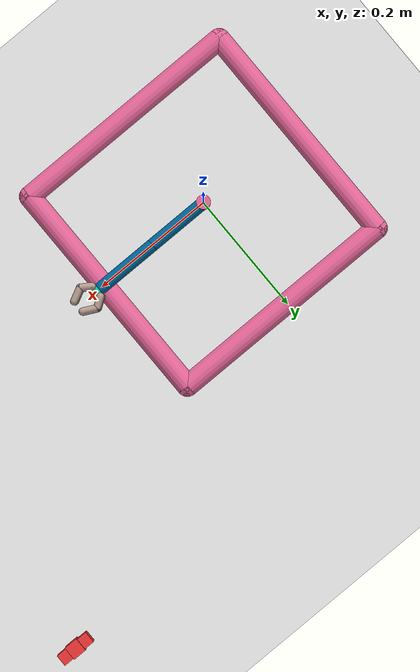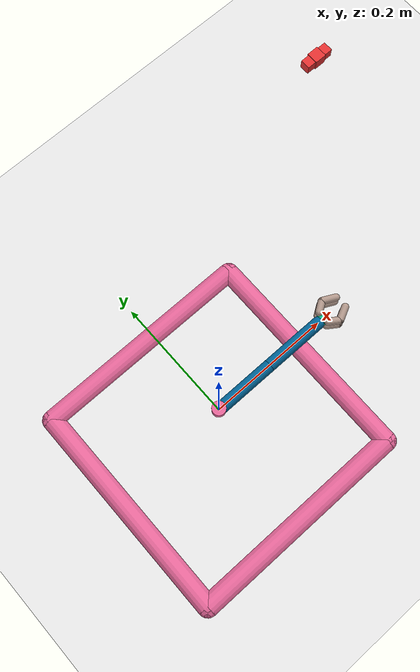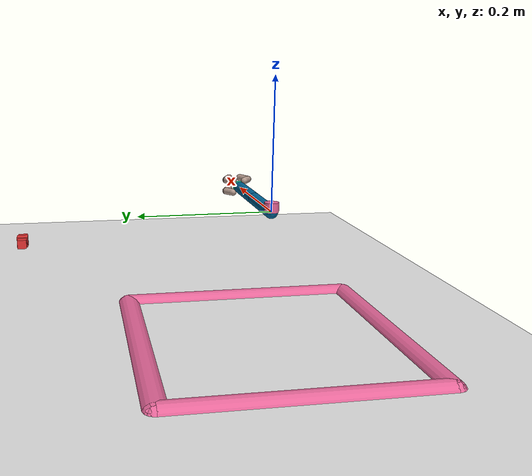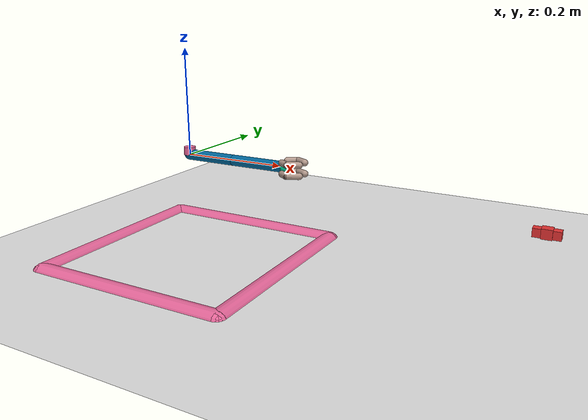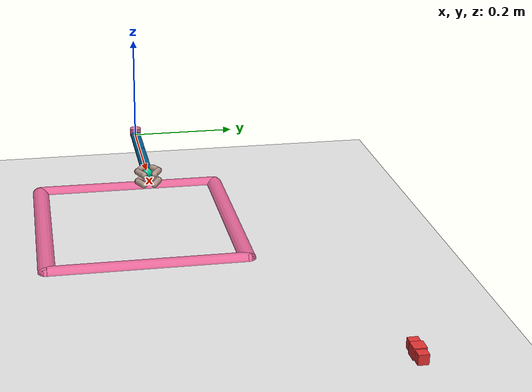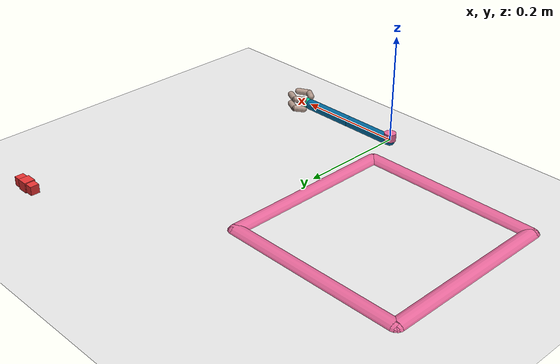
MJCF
<mujoco model="reacher">
	<compiler angle="degree" inertiafromgeom="true"/>
	<default>
		<joint armature="1" damping="1" limited="true"/>
		<geom contype="0" friction="1 0.1 0.1" rgba="0.7 0.7 0 1"/>
        <default class='1'>
			<geom friction="1 0.005 0.001" rgba=".7 .6 .55 1" contype="1" conaffinity="1"/>
		</default>
        <motor ctrllimited="true" ctrlrange="-.7 .7"/>
	</default>
	<option gravity="0 0 -9.81" integrator="RK4" timestep="0.01"/>
	<worldbody>
		<!-- Arena -->
		<geom conaffinity="1" contype="1" name="ground" pos="0 0 -.2" rgba="0.9 0.9 0.9 1" size="1 1 10" type="plane"/>
		<geom conaffinity="1" fromto="-.2 -.2 -.21 .2 -.2 -.21" name="sideS" rgba="0.9 0.4 0.6 1" size=".02" type="capsule"/>
		<geom conaffinity="1" fromto=" .2 -.2 -.21 .2  .2 -.21" name="sideE" rgba="0.9 0.4 0.6 1" size=".02" type="capsule"/>
		<geom conaffinity="1" fromto="-.2  .2 -.21 .2  .2 -.21" name="sideN" rgba="0.9 0.4 0.6 1" size=".02" type="capsule"/>
		<geom conaffinity="1" fromto="-.2 -.2 -.21 -.2 .2 -.21" name="sideW" rgba="0.9 0.4 0.6 1" size=".02" type="capsule"/>
		<!-- Arm -->
		<geom conaffinity="0" contype="0" fromto="0 0 0 0 0 0.015" name="root" rgba="0.9 0.4 0.6 1" size=".011" type="cylinder"/>
		<body name="Arm" pos="0 0 0">
			<geom fromto="0 0 0 0.10 0 0" name="link0" rgba="0.0 0.4 0.6 1" size=".01" type="capsule"/>
			<!--ROTUJE OKOLO SVOJEJ OSI (pohyb nevidno)-->
			<!--ROTUJE KOLMO NA PODLAHU -->
			<joint axis="0 1 0" limited="false" name="joint1" pos="0 0 0" type="hinge"/>
			<!--ROTUJE ROVNOBEZNE S PODLAHOU-->
			<joint axis="0 0 1" limited="false" name="joint2" pos="0 0 0" type="hinge"/>
			<body name="Forearm" pos="0.1 0 0">
				<geom fromto="0 0 0 0.10 0 0" name="link1" rgba="0.0 0.4 0.6 1" size=".01" type="capsule"/>
				<joint axis="0 1 0" limited="false" name="joint3" pos="0 0 0" type="hinge"/>
				<joint axis="0 0 1" limited="false" name="joint4" pos="0 0 0" type="hinge"/>
				<joint axis="1 0 0" limited="false" name="joint5" pos="0 0 0" type="hinge"/>

                <body name="palm" pos="0.11 0 0">
					<geom contype="0" name="palm" pos="0 0 0" rgba="0.0 0.8 0.6 1" size=".01" type="sphere"/>
                    <body name="rightclaw" pos="0 -.01 0" >
						<geom name="rightclaw_it" class="1" type="capsule" fromto="0 0 0.01 .015 -.01 0.01" 	size="0.006" />
						<geom name="rightclaw_ot" class="1" type="capsule" fromto=".015 -.01 0.01 .035 0 0.01" size="0.006" />
						<geom name="rightclaw_ib" class="1" type="capsule" fromto="0 0 -0.01 .015 -.01 -0.01" 	size="0.006" />
						<geom name="rightclaw_ob" class="1" type="capsule" fromto=".015 -.01 -0.01 .035 0 -0.01" size="0.006" />
						<joint name="rc_close" type="hinge" pos="0 0 0" axis="0 0 1" range="-40 40"/>
					</body>

					<body name="leftclaw" pos="0 .01 0">
						<geom name="leftclaw_it" class="1" type="capsule" fromto="0 0 0.01 .015 .01 0.01" 	size="0.006" />
						<geom name="leftclaw_ot" class="1" type="capsule" fromto=".015 .01 0.01 .035 0 0.01" size="0.006" />
						<geom name="leftclaw_ib" class="1" type="capsule" fromto="0 0 -0.01 .015 .01 -0.01" 	size="0.006" />
						<geom name="leftclaw_ob" class="1" type="capsule" fromto=".015 .01 -0.01 .035 0 -0.01" size="0.006" />
						<joint name="lc_close" type="hinge" pos="0 0 0" axis="0 0 1" range="-40 40"/>
					</body>
				</body>

			</body>
		</body>
		<!-- Target -->
		<body name="box" pos=".1 -.1 .01">
			<joint armature="0" axis="1 0 0" damping="0" limited="false" name="box_x" pos="0 0 0" ref=".1" stiffness="0" type="slide"/>
			<joint armature="0" axis="0 1 0" damping="0" limited="false" name="box_y" pos="0 0 0" ref="-.1" stiffness="0" type="slide"/>
			<joint armature="0" axis="0 0 1" damping="0" limited="false" name="box_z" pos="0 0 0" ref="-.1" stiffness="0" type="slide"/>
			<geom contype="1" conaffinity="1" name="box" pos=".51 .51 -.2" rgba="0.9 0.2 0.2 1" size=".012 .012 .012" type="box"/>
		</body>
        <body name="ball" pos=".1 -.1 .01">
			<joint armature="0" axis="1 0 0" damping="0" limited="false" name="ball_x" pos="0 0 0" ref=".1" stiffness="0" type="slide"/>
			<joint armature="0" axis="0 1 0" damping="0" limited="false" name="ball_y" pos="0 0 0" ref="-.1" stiffness="0" type="slide"/>
			<joint armature="0" axis="0 0 1" damping="0" limited="false" name="ball_z" pos="0 0 0" ref="-.1" stiffness="0" type="slide"/>
			<geom contype="1" conaffinity="1" name="ball" pos=".51 .51 -.2" rgba="0.9 0.2 0.2 1" size=".012" type="sphere"/>
		</body>
        <body name="box2" pos=".1 -.1 .01">
			<joint armature="0" axis="1 0 0" damping="0" limited="false" name="capsule_x" pos="0 0 0" ref=".1" stiffness="0" type="slide"/>
			<joint armature="0" axis="0 1 0" damping="0" limited="false" name="capsule_y" pos="0 0 0" ref="-.1" stiffness="0" type="slide"/>
			<joint armature="0" axis="0 0 1" damping="0" limited="false" name="capsule_z" pos="0 0 0" ref="-.1" stiffness="0" type="slide"/>
            <geom contype="1" conaffinity="1" name="box2" pos=".51 .51 -.2" rgba="0.9 0.2 0.2 1" size=".03 .010 .010" type="box"/>
		</body>

	</worldbody>
    <equality>
        <joint name="hand_coupling" active="true" joint1="rc_close" joint2="lc_close" polycoef="0 -1 0 0 0"/>
    </equality>
	<actuator>
		<motor gear="200.0" joint="joint1"/>
        <motor gear="200.0" joint="joint2"/>
		<motor gear="200.0" joint="joint3"/>
        <motor gear="200.0" joint="joint4"/>
		<motor gear="200.0" joint="joint5"/>
		<motor joint='rc_close' 	name='Arc_close' 	gear="100"/>
	</actuator>
</mujoco>
